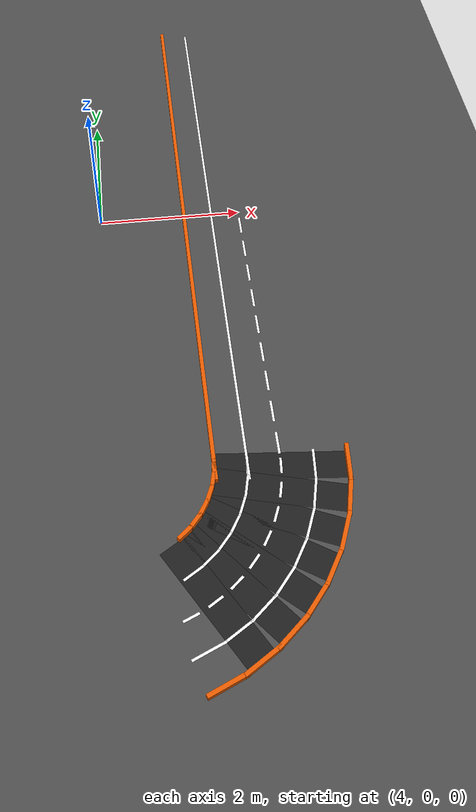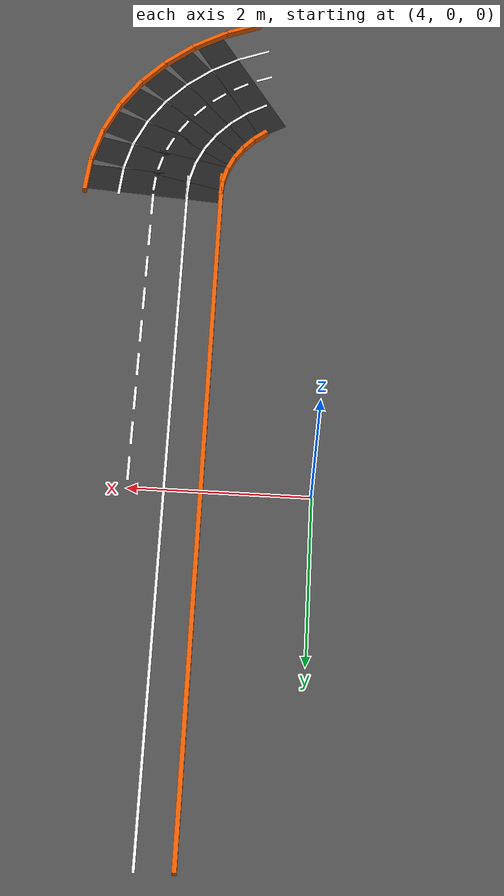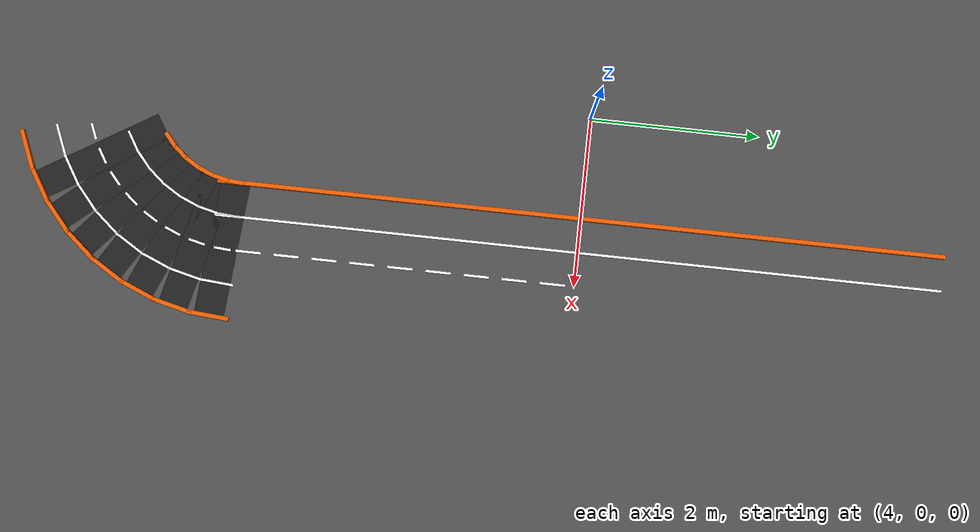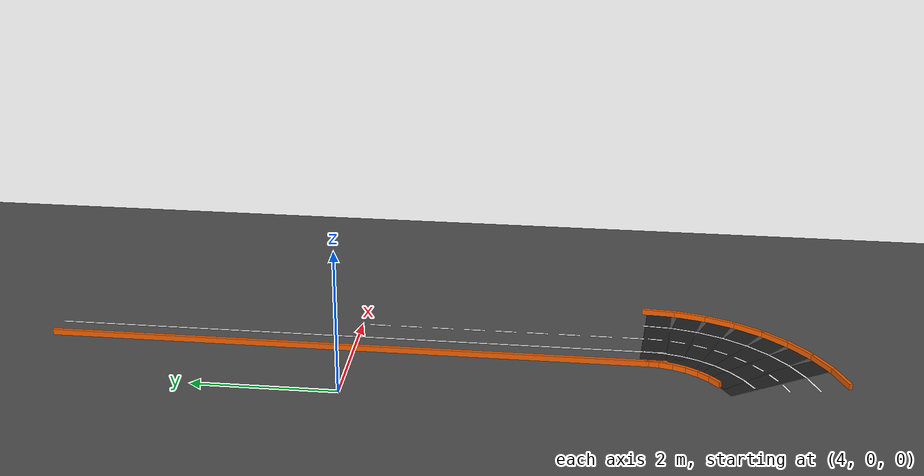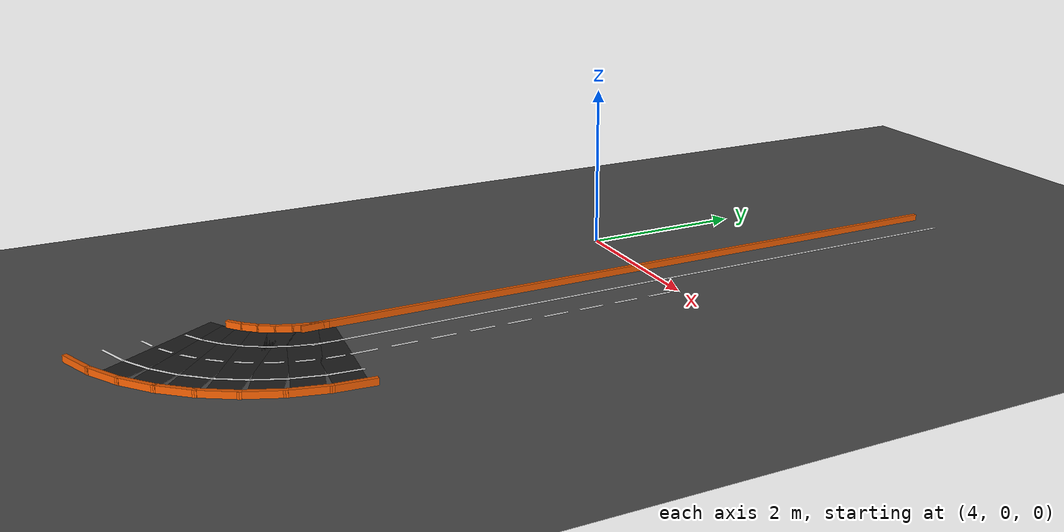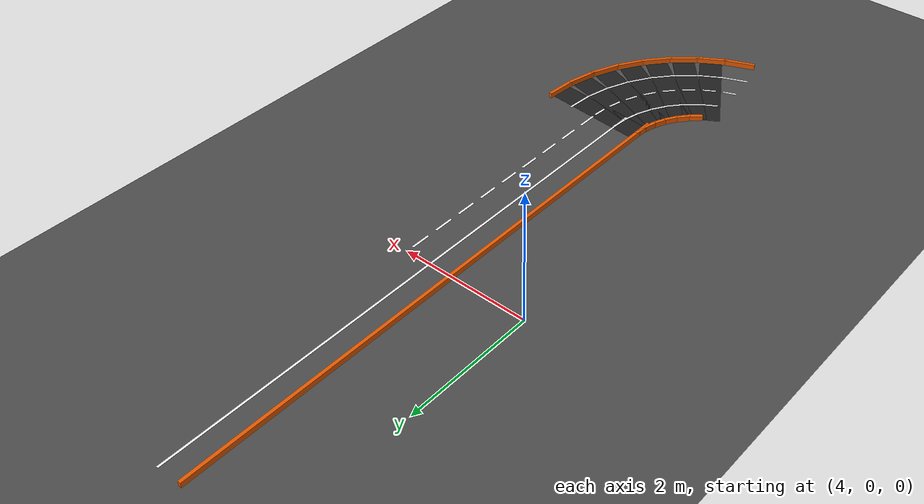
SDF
<sdf version="1.6">
 <world name="lab_track">
  <model name="ground_plane">
   <static>true</static>
   <link name="link">
    <collision name="collision">
     <geometry><plane><normal>0 0 1</normal><size>200 200</size></plane></geometry>
    </collision>
    <visual name="visual">
     <geometry><plane><normal>0 0 1</normal><size>200 200</size></plane></geometry>
     <material><ambient>0.3 0.3 0.3 1</ambient><diffuse>0.3 0.3 0.3 1</diffuse></material>
    </visual>
   </link>
  </model>
  <model name="m47">
   <static>true</static>
   <pose>5.2000 0.0000 0.04000 0 0 0.00000</pose>
   <link name="l">
    <visual name="v">
     <geometry><box><size>0.0500 8.6000 0.0800</size></box></geometry>
     <material><ambient>0.9 0.35 0.0 1</ambient><diffuse>0.9 0.35 0.0 1</diffuse></material>
    </visual>
   </link>
  </model>
  <model name="m49">
   <static>true</static>
   <pose>5.6000 0.0000 0.00200 0 0 0.00000</pose>
   <link name="l">
    <visual name="v">
     <geometry><box><size>0.0300 8.6000 0.0010</size></box></geometry>
     <material><ambient>1 1 1 1</ambient><diffuse>1 1 1 1</diffuse></material>
    </visual>
   </link>
  </model>
  <model name="m51">
   <static>true</static>
   <pose>6.0000 -3.8500 0.00200 0 0 0.00000</pose>
   <link name="l">
    <visual name="v">
     <geometry><box><size>0.0300 0.3000 0.0010</size></box></geometry>
     <material><ambient>1 1 1 1</ambient><diffuse>1 1 1 1</diffuse></material>
    </visual>
   </link>
  </model>
  <model name="m52">
   <static>true</static>
   <pose>6.0000 -3.4000 0.00200 0 0 0.00000</pose>
   <link name="l">
    <visual name="v">
     <geometry><box><size>0.0300 0.3000 0.0010</size></box></geometry>
     <material><ambient>1 1 1 1</ambient><diffuse>1 1 1 1</diffuse></material>
    </visual>
   </link>
  </model>
  <model name="m53">
   <static>true</static>
   <pose>6.0000 -2.9500 0.00200 0 0 0.00000</pose>
   <link name="l">
    <visual name="v">
     <geometry><box><size>0.0300 0.3000 0.0010</size></box></geometry>
     <material><ambient>1 1 1 1</ambient><diffuse>1 1 1 1</diffuse></material>
    </visual>
   </link>
  </model>
  <model name="m54">
   <static>true</static>
   <pose>6.0000 -2.5000 0.00200 0 0 0.00000</pose>
   <link name="l">
    <visual name="v">
     <geometry><box><size>0.0300 0.3000 0.0010</size></box></geometry>
     <material><ambient>1 1 1 1</ambient><diffuse>1 1 1 1</diffuse></material>
    </visual>
   </link>
  </model>
  <model name="m55">
   <static>true</static>
   <pose>6.0000 -2.0500 0.00200 0 0 0.00000</pose>
   <link name="l">
    <visual name="v">
     <geometry><box><size>0.0300 0.3000 0.0010</size></box></geometry>
     <material><ambient>1 1 1 1</ambient><diffuse>1 1 1 1</diffuse></material>
    </visual>
   </link>
  </model>
  <model name="m56">
   <static>true</static>
   <pose>6.0000 -1.6000 0.00200 0 0 0.00000</pose>
   <link name="l">
    <visual name="v">
     <geometry><box><size>0.0300 0.3000 0.0010</size></box></geometry>
     <material><ambient>1 1 1 1</ambient><diffuse>1 1 1 1</diffuse></material>
    </visual>
   </link>
  </model>
  <model name="m57">
   <static>true</static>
   <pose>6.0000 -1.1500 0.00200 0 0 0.00000</pose>
   <link name="l">
    <visual name="v">
     <geometry><box><size>0.0300 0.3000 0.0010</size></box></geometry>
     <material><ambient>1 1 1 1</ambient><diffuse>1 1 1 1</diffuse></material>
    </visual>
   </link>
  </model>
  <model name="m58">
   <static>true</static>
   <pose>6.0000 -0.7000 0.00200 0 0 0.00000</pose>
   <link name="l">
    <visual name="v">
     <geometry><box><size>0.0300 0.3000 0.0010</size></box></geometry>
     <material><ambient>1 1 1 1</ambient><diffuse>1 1 1 1</diffuse></material>
    </visual>
   </link>
  </model>
  <model name="m59">
   <static>true</static>
   <pose>6.0000 -0.2500 0.00200 0 0 0.00000</pose>
   <link name="l">
    <visual name="v">
     <geometry><box><size>0.0300 0.3000 0.0010</size></box></geometry>
     <material><ambient>1 1 1 1</ambient><diffuse>1 1 1 1</diffuse></material>
    </visual>
   </link>
  </model>
  <model name="m106">
   <static>true</static>
   <pose>5.0715 -6.5869 0.04000 0 0 0.39270</pose>
   <link name="l">
    <visual name="v">
     <geometry><box><size>0.4926 0.0500 0.0800</size></box></geometry>
     <material><ambient>0.9 0.35 0.0 1</ambient><diffuse>0.9 0.35 0.0 1</diffuse></material>
    </visual>
   </link>
  </model>
  <model name="m108">
   <static>true</static>
   <pose>4.9184 -6.2173 0.00200 0 0 0.39270</pose>
   <link name="l">
    <visual name="v">
     <geometry><box><size>0.4222 0.0300 0.0010</size></box></geometry>
     <material><ambient>1 1 1 1</ambient><diffuse>1 1 1 1</diffuse></material>
    </visual>
   </link>
  </model>
  <model name="m109">
   <static>true</static>
   <pose>4.7654 -5.8478 0.00200 0 0 0.39270</pose>
   <link name="l">
    <visual name="v">
     <geometry><box><size>0.2042 0.0300 0.0010</size></box></geometry>
     <material><ambient>1 1 1 1</ambient><diffuse>1 1 1 1</diffuse></material>
    </visual>
   </link>
  </model>
  <model name="m110">
   <static>true</static>
   <pose>5.0450 -5.7053 0.00100 0 0 0.54978</pose>
   <link name="l">
    <visual name="v">
     <geometry><box><size>0.3519 1.6000 0.0010</size></box></geometry>
     <material><ambient>0.12 0.12 0.12 1</ambient><diffuse>0.12 0.12 0.12 1</diffuse></material>
    </visual>
   </link>
  </model>
  <model name="m112">
   <static>true</static>
   <pose>5.4630 -6.3874 0.04000 0 0 0.54978</pose>
   <link name="l">
    <visual name="v">
     <geometry><box><size>0.4926 0.0500 0.0800</size></box></geometry>
     <material><ambient>0.9 0.35 0.0 1</ambient><diffuse>0.9 0.35 0.0 1</diffuse></material>
    </visual>
   </link>
  </model>
  <model name="m113">
   <static>true</static>
   <pose>4.8360 -5.3642 0.00200 0 0 0.54978</pose>
   <link name="l">
    <visual name="v">
     <geometry><box><size>0.2815 0.0300 0.0010</size></box></geometry>
     <material><ambient>1 1 1 1</ambient><diffuse>1 1 1 1</diffuse></material>
    </visual>
   </link>
  </model>
  <model name="m114">
   <static>true</static>
   <pose>5.2540 -6.0463 0.00200 0 0 0.54978</pose>
   <link name="l">
    <visual name="v">
     <geometry><box><size>0.4222 0.0300 0.0010</size></box></geometry>
     <material><ambient>1 1 1 1</ambient><diffuse>1 1 1 1</diffuse></material>
    </visual>
   </link>
  </model>
  <model name="m115">
   <static>true</static>
   <pose>5.0450 -5.7053 0.00200 0 0 0.54978</pose>
   <link name="l">
    <visual name="v">
     <geometry><box><size>0.2042 0.0300 0.0010</size></box></geometry>
     <material><ambient>1 1 1 1</ambient><diffuse>1 1 1 1</diffuse></material>
    </visual>
   </link>
  </model>
  <model name="m116">
   <static>true</static>
   <pose>5.2989 -5.5208 0.00100 0 0 0.70686</pose>
   <link name="l">
    <visual name="v">
     <geometry><box><size>0.3519 1.6000 0.0010</size></box></geometry>
     <material><ambient>0.12 0.12 0.12 1</ambient><diffuse>0.12 0.12 0.12 1</diffuse></material>
    </visual>
   </link>
  </model>
  <model name="m117">
   <static>true</static>
   <pose>4.7793 -4.9125 0.04000 0 0 0.70686</pose>
   <link name="l">
    <visual name="v">
     <geometry><box><size>0.2111 0.0500 0.0800</size></box></geometry>
     <material><ambient>0.9 0.35 0.0 1</ambient><diffuse>0.9 0.35 0.0 1</diffuse></material>
    </visual>
   </link>
  </model>
  <model name="m118">
   <static>true</static>
   <pose>5.8185 -6.1291 0.04000 0 0 0.70686</pose>
   <link name="l">
    <visual name="v">
     <geometry><box><size>0.4926 0.0500 0.0800</size></box></geometry>
     <material><ambient>0.9 0.35 0.0 1</ambient><diffuse>0.9 0.35 0.0 1</diffuse></material>
    </visual>
   </link>
  </model>
  <model name="m119">
   <static>true</static>
   <pose>5.0391 -5.2166 0.00200 0 0 0.70686</pose>
   <link name="l">
    <visual name="v">
     <geometry><box><size>0.2815 0.0300 0.0010</size></box></geometry>
     <material><ambient>1 1 1 1</ambient><diffuse>1 1 1 1</diffuse></material>
    </visual>
   </link>
  </model>
  <model name="m120">
   <static>true</static>
   <pose>5.5587 -5.8250 0.00200 0 0 0.70686</pose>
   <link name="l">
    <visual name="v">
     <geometry><box><size>0.4222 0.0300 0.0010</size></box></geometry>
     <material><ambient>1 1 1 1</ambient><diffuse>1 1 1 1</diffuse></material>
    </visual>
   </link>
  </model>
  <model name="m121">
   <static>true</static>
   <pose>5.2989 -5.5208 0.00200 0 0 0.70686</pose>
   <link name="l">
    <visual name="v">
     <geometry><box><size>0.2042 0.0300 0.0010</size></box></geometry>
     <material><ambient>1 1 1 1</ambient><diffuse>1 1 1 1</diffuse></material>
    </visual>
   </link>
  </model>
  <model name="m122">
   <static>true</static>
   <pose>5.5208 -5.2989 0.00100 0 0 0.86394</pose>
   <link name="l">
    <visual name="v">
     <geometry><box><size>0.3519 1.6000 0.0010</size></box></geometry>
     <material><ambient>0.12 0.12 0.12 1</ambient><diffuse>0.12 0.12 0.12 1</diffuse></material>
    </visual>
   </link>
  </model>
  <model name="m123">
   <static>true</static>
   <pose>4.9125 -4.7793 0.04000 0 0 0.86394</pose>
   <link name="l">
    <visual name="v">
     <geometry><box><size>0.2111 0.0500 0.0800</size></box></geometry>
     <material><ambient>0.9 0.35 0.0 1</ambient><diffuse>0.9 0.35 0.0 1</diffuse></material>
    </visual>
   </link>
  </model>
  <model name="m124">
   <static>true</static>
   <pose>6.1291 -5.8185 0.04000 0 0 0.86394</pose>
   <link name="l">
    <visual name="v">
     <geometry><box><size>0.4926 0.0500 0.0800</size></box></geometry>
     <material><ambient>0.9 0.35 0.0 1</ambient><diffuse>0.9 0.35 0.0 1</diffuse></material>
    </visual>
   </link>
  </model>
  <model name="m125">
   <static>true</static>
   <pose>5.2166 -5.0391 0.00200 0 0 0.86394</pose>
   <link name="l">
    <visual name="v">
     <geometry><box><size>0.2815 0.0300 0.0010</size></box></geometry>
     <material><ambient>1 1 1 1</ambient><diffuse>1 1 1 1</diffuse></material>
    </visual>
   </link>
  </model>
  <model name="m126">
   <static>true</static>
   <pose>5.8250 -5.5587 0.00200 0 0 0.86394</pose>
   <link name="l">
    <visual name="v">
     <geometry><box><size>0.4222 0.0300 0.0010</size></box></geometry>
     <material><ambient>1 1 1 1</ambient><diffuse>1 1 1 1</diffuse></material>
    </visual>
   </link>
  </model>
  <model name="m127">
   <static>true</static>
   <pose>5.5208 -5.2989 0.00200 0 0 0.86394</pose>
   <link name="l">
    <visual name="v">
     <geometry><box><size>0.2042 0.0300 0.0010</size></box></geometry>
     <material><ambient>1 1 1 1</ambient><diffuse>1 1 1 1</diffuse></material>
    </visual>
   </link>
  </model>
  <model name="m128">
   <static>true</static>
   <pose>5.7053 -5.0450 0.00100 0 0 1.02102</pose>
   <link name="l">
    <visual name="v">
     <geometry><box><size>0.3519 1.6000 0.0010</size></box></geometry>
     <material><ambient>0.12 0.12 0.12 1</ambient><diffuse>0.12 0.12 0.12 1</diffuse></material>
    </visual>
   </link>
  </model>
  <model name="m129">
   <static>true</static>
   <pose>5.0232 -4.6270 0.04000 0 0 1.02102</pose>
   <link name="l">
    <visual name="v">
     <geometry><box><size>0.2111 0.0500 0.0800</size></box></geometry>
     <material><ambient>0.9 0.35 0.0 1</ambient><diffuse>0.9 0.35 0.0 1</diffuse></material>
    </visual>
   </link>
  </model>
  <model name="m130">
   <static>true</static>
   <pose>6.3874 -5.4630 0.04000 0 0 1.02102</pose>
   <link name="l">
    <visual name="v">
     <geometry><box><size>0.4926 0.0500 0.0800</size></box></geometry>
     <material><ambient>0.9 0.35 0.0 1</ambient><diffuse>0.9 0.35 0.0 1</diffuse></material>
    </visual>
   </link>
  </model>
  <model name="m131">
   <static>true</static>
   <pose>5.3642 -4.8360 0.00200 0 0 1.02102</pose>
   <link name="l">
    <visual name="v">
     <geometry><box><size>0.2815 0.0300 0.0010</size></box></geometry>
     <material><ambient>1 1 1 1</ambient><diffuse>1 1 1 1</diffuse></material>
    </visual>
   </link>
  </model>
  <model name="m132">
   <static>true</static>
   <pose>6.0463 -5.2540 0.00200 0 0 1.02102</pose>
   <link name="l">
    <visual name="v">
     <geometry><box><size>0.4222 0.0300 0.0010</size></box></geometry>
     <material><ambient>1 1 1 1</ambient><diffuse>1 1 1 1</diffuse></material>
    </visual>
   </link>
  </model>
  <model name="m133">
   <static>true</static>
   <pose>5.7053 -5.0450 0.00200 0 0 1.02102</pose>
   <link name="l">
    <visual name="v">
     <geometry><box><size>0.2042 0.0300 0.0010</size></box></geometry>
     <material><ambient>1 1 1 1</ambient><diffuse>1 1 1 1</diffuse></material>
    </visual>
   </link>
  </model>
  <model name="m134">
   <static>true</static>
   <pose>5.8478 -4.7654 0.00100 0 0 1.17810</pose>
   <link name="l">
    <visual name="v">
     <geometry><box><size>0.3519 1.6000 0.0010</size></box></geometry>
     <material><ambient>0.12 0.12 0.12 1</ambient><diffuse>0.12 0.12 0.12 1</diffuse></material>
    </visual>
   </link>
  </model>
  <model name="m135">
   <static>true</static>
   <pose>5.1087 -4.4592 0.04000 0 0 1.17810</pose>
   <link name="l">
    <visual name="v">
     <geometry><box><size>0.2111 0.0500 0.0800</size></box></geometry>
     <material><ambient>0.9 0.35 0.0 1</ambient><diffuse>0.9 0.35 0.0 1</diffuse></material>
    </visual>
   </link>
  </model>
  <model name="m136">
   <static>true</static>
   <pose>6.5869 -5.0715 0.04000 0 0 1.17810</pose>
   <link name="l">
    <visual name="v">
     <geometry><box><size>0.4926 0.0500 0.0800</size></box></geometry>
     <material><ambient>0.9 0.35 0.0 1</ambient><diffuse>0.9 0.35 0.0 1</diffuse></material>
    </visual>
   </link>
  </model>
  <model name="m137">
   <static>true</static>
   <pose>5.4782 -4.6123 0.00200 0 0 1.17810</pose>
   <link name="l">
    <visual name="v">
     <geometry><box><size>0.2815 0.0300 0.0010</size></box></geometry>
     <material><ambient>1 1 1 1</ambient><diffuse>1 1 1 1</diffuse></material>
    </visual>
   </link>
  </model>
  <model name="m138">
   <static>true</static>
   <pose>6.2173 -4.9184 0.00200 0 0 1.17810</pose>
   <link name="l">
    <visual name="v">
     <geometry><box><size>0.4222 0.0300 0.0010</size></box></geometry>
     <material><ambient>1 1 1 1</ambient><diffuse>1 1 1 1</diffuse></material>
    </visual>
   </link>
  </model>
  <model name="m139">
   <static>true</static>
   <pose>5.8478 -4.7654 0.00200 0 0 1.17810</pose>
   <link name="l">
    <visual name="v">
     <geometry><box><size>0.2042 0.0300 0.0010</size></box></geometry>
     <material><ambient>1 1 1 1</ambient><diffuse>1 1 1 1</diffuse></material>
    </visual>
   </link>
  </model>
  <model name="m140">
   <static>true</static>
   <pose>5.9447 -4.4669 0.00100 0 0 1.33518</pose>
   <link name="l">
    <visual name="v">
     <geometry><box><size>0.3519 1.6000 0.0010</size></box></geometry>
     <material><ambient>0.12 0.12 0.12 1</ambient><diffuse>0.12 0.12 0.12 1</diffuse></material>
    </visual>
   </link>
  </model>
  <model name="m141">
   <static>true</static>
   <pose>5.1668 -4.2801 0.04000 0 0 1.33518</pose>
   <link name="l">
    <visual name="v">
     <geometry><box><size>0.2111 0.0500 0.0800</size></box></geometry>
     <material><ambient>0.9 0.35 0.0 1</ambient><diffuse>0.9 0.35 0.0 1</diffuse></material>
    </visual>
   </link>
  </model>
  <model name="m142">
   <static>true</static>
   <pose>6.7226 -4.6536 0.04000 0 0 1.33518</pose>
   <link name="l">
    <visual name="v">
     <geometry><box><size>0.4926 0.0500 0.0800</size></box></geometry>
     <material><ambient>0.9 0.35 0.0 1</ambient><diffuse>0.9 0.35 0.0 1</diffuse></material>
    </visual>
   </link>
  </model>
  <model name="m143">
   <static>true</static>
   <pose>5.5558 -4.3735 0.00200 0 0 1.33518</pose>
   <link name="l">
    <visual name="v">
     <geometry><box><size>0.2815 0.0300 0.0010</size></box></geometry>
     <material><ambient>1 1 1 1</ambient><diffuse>1 1 1 1</diffuse></material>
    </visual>
   </link>
  </model>
  <model name="m144">
   <static>true</static>
   <pose>6.3337 -4.5603 0.00200 0 0 1.33518</pose>
   <link name="l">
    <visual name="v">
     <geometry><box><size>0.4222 0.0300 0.0010</size></box></geometry>
     <material><ambient>1 1 1 1</ambient><diffuse>1 1 1 1</diffuse></material>
    </visual>
   </link>
  </model>
  <model name="m145">
   <static>true</static>
   <pose>5.9447 -4.4669 0.00200 0 0 1.33518</pose>
   <link name="l">
    <visual name="v">
     <geometry><box><size>0.2042 0.0300 0.0010</size></box></geometry>
     <material><ambient>1 1 1 1</ambient><diffuse>1 1 1 1</diffuse></material>
    </visual>
   </link>
  </model>
  <model name="m146">
   <static>true</static>
   <pose>5.9938 -4.1569 0.00100 0 0 1.49226</pose>
   <link name="l">
    <visual name="v">
     <geometry><box><size>0.3519 1.6000 0.0010</size></box></geometry>
     <material><ambient>0.12 0.12 0.12 1</ambient><diffuse>0.12 0.12 0.12 1</diffuse></material>
    </visual>
   </link>
  </model>
  <model name="m147">
   <static>true</static>
   <pose>5.1963 -4.0942 0.04000 0 0 1.49226</pose>
   <link name="l">
    <visual name="v">
     <geometry><box><size>0.2111 0.0500 0.0800</size></box></geometry>
     <material><ambient>0.9 0.35 0.0 1</ambient><diffuse>0.9 0.35 0.0 1</diffuse></material>
    </visual>
   </link>
  </model>
  <model name="m148">
   <static>true</static>
   <pose>6.7914 -4.2197 0.04000 0 0 1.49226</pose>
   <link name="l">
    <visual name="v">
     <geometry><box><size>0.4926 0.0500 0.0800</size></box></geometry>
     <material><ambient>0.9 0.35 0.0 1</ambient><diffuse>0.9 0.35 0.0 1</diffuse></material>
    </visual>
   </link>
  </model>
  <model name="m149">
   <static>true</static>
   <pose>5.5951 -4.1255 0.00200 0 0 1.49226</pose>
   <link name="l">
    <visual name="v">
     <geometry><box><size>0.2815 0.0300 0.0010</size></box></geometry>
     <material><ambient>1 1 1 1</ambient><diffuse>1 1 1 1</diffuse></material>
    </visual>
   </link>
  </model>
  <model name="m150">
   <static>true</static>
   <pose>6.3926 -4.1883 0.00200 0 0 1.49226</pose>
   <link name="l">
    <visual name="v">
     <geometry><box><size>0.4222 0.0300 0.0010</size></box></geometry>
     <material><ambient>1 1 1 1</ambient><diffuse>1 1 1 1</diffuse></material>
    </visual>
   </link>
  </model>
  <model name="m151">
   <static>true</static>
   <pose>5.9938 -4.1569 0.00200 0 0 1.49226</pose>
   <link name="l">
    <visual name="v">
     <geometry><box><size>0.2042 0.0300 0.0010</size></box></geometry>
     <material><ambient>1 1 1 1</ambient><diffuse>1 1 1 1</diffuse></material>
    </visual>
   </link>
  </model>
 </world>
</sdf>
